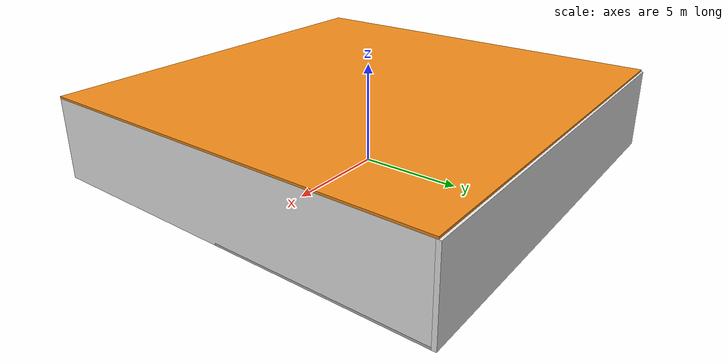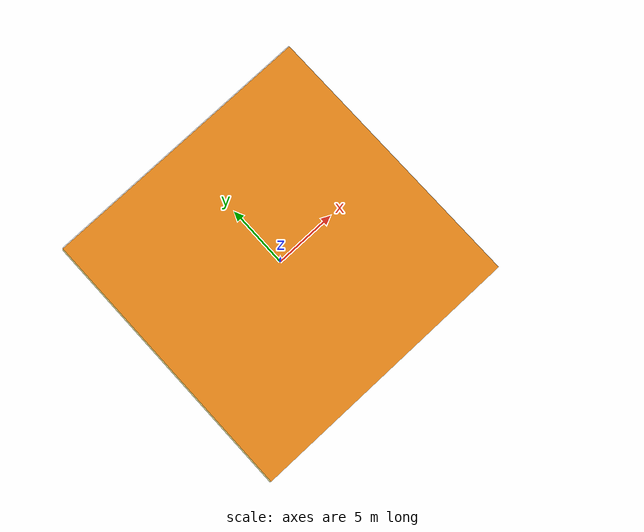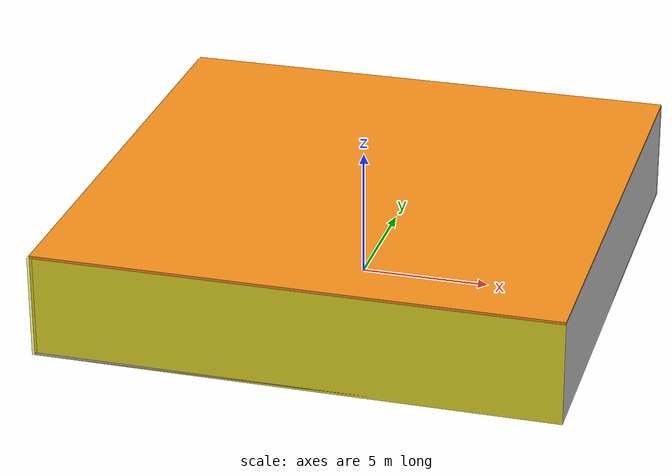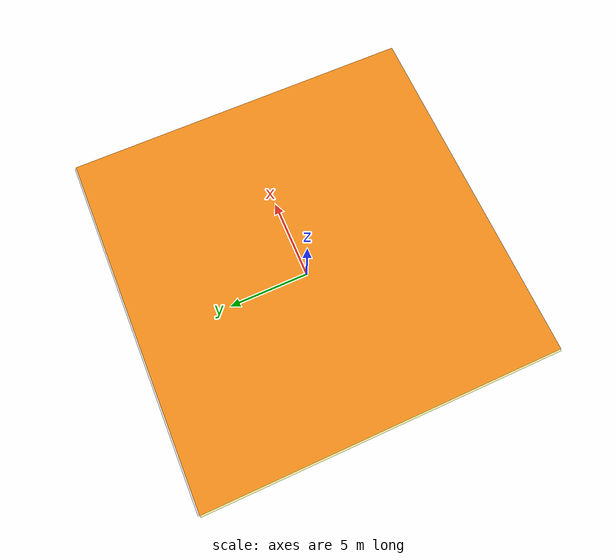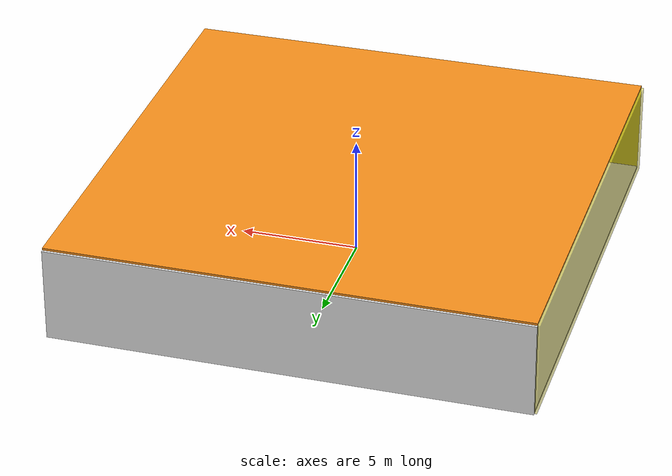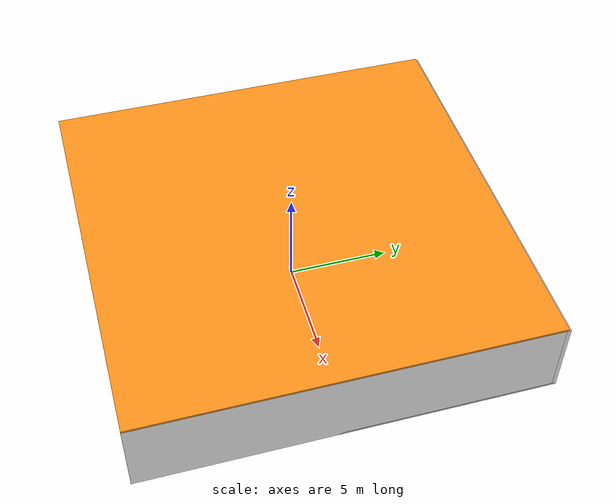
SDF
<sdf version="1.4">
 <world name="default">
  <physics type="ode">
   <max_step_size>0.001</max_step_size>
   <real_time_factor>1</real_time_factor>
   <real_time_update_rate>1000</real_time_update_rate>
   <gravity>0 0 -9.8</gravity>
  </physics>
  <scene><ambient>0.4 0.4 0.4 1</ambient><background>0.7 0.7 0.7 1</background><shadows>1</shadows></scene>
  <model name="Surrounding">
   <static>1</static>
   <link name="Ceiling">
    <collision name="Ceiling_Collision"><geometry><box><size>20 20 0.1</size></box></geometry></collision>
    <visual name="Ceiling_Visual">
     <geometry><box><size>20 20 0.1</size></box></geometry>
     <material>
      <script><uri>file://media/materials/scripts/gazebo.material</uri><name>Gazebo/Orange</name></script>
     </material>
    </visual>
    <pose>0 0 4.05 0 0 0</pose>
   </link>
   <link name="Wall_South">
    <collision name="Wall_South_Collision">
     <geometry><box><size>20 0 4</size></box></geometry>
     <pose>0 0 2 0 -0 0</pose>
    </collision>
    <visual name="Wall_South_Visual">
     <pose>0 0 2 0 -0 0</pose>
     <geometry><box><size>20 0 4</size></box></geometry>
     <material>
      <script><uri>file://media/materials/scripts/gazebo.material</uri><name>Gazebo/YellowGlow</name></script>
     </material>
    </visual>
    <velocity_decay><linear>0</linear><angular>0</angular></velocity_decay>
    <pose>0 -10 0 0 -0 0</pose>
   </link>
   <link name="Wall_East">
    <collision name="Wall_21_Collision">
     <geometry><box><size>20 0 4</size></box></geometry>
     <pose>0 0 2 0 -0 0</pose>
    </collision>
    <visual name="Wall_21_Visual">
     <pose>0 0 2 0 -0 0</pose>
     <geometry><box><size>20 0 4</size></box></geometry>
     <material>
      <script><uri>file://media/materials/scripts/gazebo.material</uri><name>Gazebo/White</name></script>
     </material>
    </visual>
    <velocity_decay><linear>0</linear><angular>0</angular></velocity_decay>
    <pose>10 0 0 0 -0 1.5708</pose>
   </link>
   <link name="Wall_North">
    <collision name="Wall_22_Collision">
     <geometry><box><size>20 0.2 4</size></box></geometry>
     <pose>0 0 2 0 -0 0</pose>
    </collision>
    <visual name="Wall_22_Visual">
     <pose>0 0 2 0 -0 0</pose>
     <geometry><box><size>20 0.2 4</size></box></geometry>
     <material>
      <script><uri>file://media/materials/scripts/gazebo.material</uri><name>Gazebo/White</name></script>
     </material>
    </visual>
    <velocity_decay><linear>0</linear><angular>0</angular></velocity_decay>
    <pose>0 10 0 0 -0 0</pose>
   </link>
   <link name="Wall_West">
    <collision name="Wall_23_Collision">
     <geometry><box><size>20 0.2 4</size></box></geometry>
     <pose>0 0 2 0 -0 0</pose>
    </collision>
    <visual name="Wall_23_Visual">
     <pose>0 0 2 0 -0 0</pose>
     <geometry><box><size>20 0.2 4</size></box></geometry>
     <material>
      <script>
       <uri>file://media/materials/scripts/gazebo.material</uri>
       <name>Gazebo/YellowTransparent</name>
      </script>
     </material>
    </visual>
    <velocity_decay><linear>0</linear><angular>0</angular></velocity_decay>
    <pose>-10 0 0 0 0 -1.5708</pose>
   </link>
   <link name="Ground_link">
    <collision name="collision">
     <pose>0 0 .05 0 -0 0</pose>
     <geometry><box><size>20 20 0.1</size></box></geometry>
    </collision>
    <visual name="visual">
     <pose>0 0 .05 0 -0 0</pose>
     <geometry><box><size>20 20 0.1</size></box></geometry>
     <material>
      <script><uri>file://media/materials/scripts/gazebo.material</uri><name>Gazebo/LightOff</name></script>
     </material>
    </visual>
   </link>
   <static>1</static>
  </model>
  <spherical_coordinates>
   <surface_model>EARTH_WGS84</surface_model>
   <latitude_deg>0</latitude_deg>
   <longitude_deg>0</longitude_deg>
   <elevation>0</elevation>
   <heading_deg>0</heading_deg>
  </spherical_coordinates>
  <light name="lightball_0" type="diffuse">
   <diffuse>0.8 0.8 0.8 1</diffuse>
   <specular>0.2 0.2 0.2 1</specular>
   <attenuation>
    <range>100</range>
    <constant>0.7</constant>
    <linear>0.01</linear>
    <quadratic>0.001</quadratic>
   </attenuation>
   <direction>-0.5 0.1 -0.9</direction>
   <pose>2.1455598951 -8.71885527849 0.919633775977 0 0 0</pose>
  </light>
  <light name="lightball_1" type="diffuse">
   <diffuse>0.8 0.8 0.8 1</diffuse>
   <specular>0.2 0.2 0.2 1</specular>
   <attenuation>
    <range>100</range>
    <constant>0.7</constant>
    <linear>0.01</linear>
    <quadratic>0.001</quadratic>
   </attenuation>
   <direction>-0.5 0.1 -0.9</direction>
   <pose>3.77440732822 -5.47869696638 3.19067714399 0 0 0</pose>
  </light>
  <light name="lightball_2" type="diffuse">
   <diffuse>0.8 0.8 0.8 1</diffuse>
   <specular>0.2 0.2 0.2 1</specular>
   <attenuation>
    <range>100</range>
    <constant>0.7</constant>
    <linear>0.01</linear>
    <quadratic>0.001</quadratic>
   </attenuation>
   <direction>-0.5 0.1 -0.9</direction>
   <pose>3.00161298481 -2.66907233799 1.41523178971 0 0 0</pose>
  </light>
  <light name="lightball_3" type="diffuse">
   <diffuse>0.8 0.8 0.8 1</diffuse>
   <specular>0.2 0.2 0.2 1</specular>
   <attenuation>
    <range>100</range>
    <constant>0.7</constant>
    <linear>0.01</linear>
    <quadratic>0.001</quadratic>
   </attenuation>
   <direction>-0.5 0.1 -0.9</direction>
   <pose>-9.16305727813 8.26487359116 1.09773793114 0 0 0</pose>
  </light>
  <light name="lightball_4" type="diffuse">
   <diffuse>0.8 0.8 0.8 1</diffuse>
   <specular>0.2 0.2 0.2 1</specular>
   <attenuation>
    <range>100</range>
    <constant>0.7</constant>
    <linear>0.01</linear>
    <quadratic>0.001</quadratic>
   </attenuation>
   <direction>-0.5 0.1 -0.9</direction>
   <pose>-8.31296976762 -0.604498680194 2.06776895288 0 0 0</pose>
  </light>
  <light name="lightball_5" type="diffuse">
   <diffuse>0.8 0.8 0.8 1</diffuse>
   <specular>0.2 0.2 0.2 1</specular>
   <attenuation>
    <range>100</range>
    <constant>0.7</constant>
    <linear>0.01</linear>
    <quadratic>0.001</quadratic>
   </attenuation>
   <direction>-0.5 0.1 -0.9</direction>
   <pose>4.54815435545 7.01987943527 0.84922028655 0 0 0</pose>
  </light>
  <light name="lightball_6" type="diffuse">
   <diffuse>0.8 0.8 0.8 1</diffuse>
   <specular>0.2 0.2 0.2 1</specular>
   <attenuation>
    <range>100</range>
    <constant>0.7</constant>
    <linear>0.01</linear>
    <quadratic>0.001</quadratic>
   </attenuation>
   <direction>-0.5 0.1 -0.9</direction>
   <pose>8.53055558914 -6.05888709046 3.27897669059 0 0 0</pose>
  </light>
  <light name="lightball_7" type="diffuse">
   <diffuse>0.8 0.8 0.8 1</diffuse>
   <specular>0.2 0.2 0.2 1</specular>
   <attenuation>
    <range>100</range>
    <constant>0.7</constant>
    <linear>0.01</linear>
    <quadratic>0.001</quadratic>
   </attenuation>
   <direction>-0.5 0.1 -0.9</direction>
   <pose>5.36864088306 -6.45819344484 1.5409768076 0 0 0</pose>
  </light>
  <light name="lightball_8" type="diffuse">
   <diffuse>0.8 0.8 0.8 1</diffuse>
   <specular>0.2 0.2 0.2 1</specular>
   <attenuation>
    <range>100</range>
    <constant>0.7</constant>
    <linear>0.01</linear>
    <quadratic>0.001</quadratic>
   </attenuation>
   <direction>-0.5 0.1 -0.9</direction>
   <pose>-9.57998834809 6.61903494949 1.5919854352 0 0 0</pose>
  </light>
  <light name="lightball_9" type="diffuse">
   <diffuse>0.8 0.8 0.8 1</diffuse>
   <specular>0.2 0.2 0.2 1</specular>
   <attenuation>
    <range>100</range>
    <constant>0.7</constant>
    <linear>0.01</linear>
    <quadratic>0.001</quadratic>
   </attenuation>
   <direction>-0.5 0.1 -0.9</direction>
   <pose>9.16471214586 6.73482855079 3.46668703601 0 0 0</pose>
  </light>
  <light name="lightball_10" type="diffuse">
   <diffuse>0.8 0.8 0.8 1</diffuse>
   <specular>0.2 0.2 0.2 1</specular>
   <attenuation>
    <range>100</range>
    <constant>0.7</constant>
    <linear>0.01</linear>
    <quadratic>0.001</quadratic>
   </attenuation>
   <direction>-0.5 0.1 -0.9</direction>
   <pose>0.066917896464 -3.42340200829 1.85930018366 0 0 0</pose>
  </light>
  <include><uri>model://cabinet</uri><pose>5.22252922143 -8.06915287601 0 0 0 0.432475264632</pose></include>
  <include>
   <uri>model://construction_cone</uri>
   <pose>3.73151332749 -1.13582037816 0 0 0 1.12912261194</pose>
  </include>
 </world>
</sdf>

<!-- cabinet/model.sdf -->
<sdf version="1.5">
  <model name="cabinet">
    <static>true</static>
    <link name="cabinet_bottom_plate">
      <inertial>
        <pose>0 0 -1 0 0 0</pose>
        <inertia>
          <ixx>2.050000</ixx>
          <ixy>0</ixy>
          <ixz>0</ixz>
          <iyy>2.050000</iyy>
          <iyz>0</iyz>
          <izz>2.050000</izz>
        </inertia>
        <mass>25.000000</mass>
      </inertial>
      <collision name="cabinet_bottom_plate_geom">
        <pose>0 0 0.010000 0 0 0</pose>
        <geometry>
          <box>
            <size>0.450000 0.450000 0.020000</size>
          </box>
        </geometry>
      </collision>
      <visual name="cabinet_bottom_plate_geom_visual">
        <pose>0 0 0.010000 0 0 0</pose>
        <geometry>
          <box>
            <size>0.450000 0.450000 0.020000</size>
          </box>
        </geometry>
        <material>
          <script>
            <uri>model://media/materials/scripts/gazebo.material</uri>
            <name>Gazebo/Wood</name>
          </script>
        </material>
      </visual>
      <collision name="cabinet_bottom_plate_geom_cabinet_back_plate">
        <pose>0.235000 0 0.510000 0 0 0</pose>
        <geometry>
          <box>
            <size>0.020000 0.450000 1.020000</size>
          </box>
        </geometry>
      </collision>
      <visual name="cabinet_bottom_plate_geom_cabinet_back_plate_visual">
        <pose>0.235000 0 0.510000 0 0 0</pose>
        <geometry>
          <box>
            <size>0.020000 0.450000 1.020000</size>
          </box>
        </geometry>
        <material>
          <script>
            <uri>model://media/materials/scripts/gazebo.material</uri>
            <name>Gazebo/Wood</name>
          </script>
        </material>
      </visual>
      <collision name="cabinet_bottom_plate_geom_cabinet_left_plate">
        <pose>0 0.235000 0.510000 0 0 0</pose>
        <geometry>
          <box>
            <size>0.450000 0.020000 1.020000</size>
          </box>
        </geometry>
      </collision>
      <visual name="cabinet_bottom_plate_geom_cabinet_left_plate_visual">
        <pose>0 0.235000 0.510000 0 0 0</pose>
        <geometry>
          <box>
            <size>0.450000 0.020000 1.020000</size>
          </box>
        </geometry>
        <material>
          <script>
            <uri>model://media/materials/scripts/gazebo.material</uri>
            <name>Gazebo/Wood</name>
          </script>
        </material>
      </visual>
      <collision name="cabinet_bottom_plate_geom_cabinet_middle_plate">
        <pose>0 0 0.510000 0 0 0</pose>
        <geometry>
          <box>
            <size>0.450000 0.450000 0.020000</size>
          </box>
        </geometry>
      </collision>
      <visual name="cabinet_bottom_plate_geom_cabinet_middle_plate_visual">
        <pose>0 0 0.510000 0 0 0</pose>
        <geometry>
          <box>
            <size>0.450000 0.450000 0.020000</size>
          </box>
        </geometry>
        <material>
          <script>
            <uri>model://media/materials/scripts/gazebo.material</uri>
            <name>Gazebo/Wood</name>
          </script>
        </material>
      </visual>
      <collision name="cabinet_bottom_plate_geom_cabinet_right_plate">
        <pose>0 -0.235000 0.510000 0 0 0</pose>
        <geometry>
          <box>
            <size>0.450000 0.020000 1.020000</size>
          </box>
        </geometry>
      </collision>
      <visual name="cabinet_bottom_plate_geom_cabinet_right_plate_visual">
        <pose>0 -0.235000 0.510000 0 0 0</pose>
        <geometry>
          <box>
            <size>0.450000 0.020000 1.020000</size>
          </box>
        </geometry>
        <material>
          <script>
            <uri>model://media/materials/scripts/gazebo.material</uri>
            <name>Gazebo/Wood</name>
          </script>
        </material>
      </visual>
      <collision name="cabinet_bottom_plate_geom_cabinet_top_plate">
        <pose>0 0 1.010000 0 0 0</pose>
        <geometry>
          <box>
            <size>0.450000 0.450000 0.020000</size>
          </box>
        </geometry>
      </collision>
      <visual name="cabinet_bottom_plate_geom_cabinet_top_plate_visual">
        <pose>0 0 1.010000 0 0 0</pose>
        <geometry>
          <box>
            <size>0.450000 0.450000 0.020000</size>
          </box>
        </geometry>
        <material>
          <script>
            <uri>model://media/materials/scripts/gazebo.material</uri>
            <name>Gazebo/Wood</name>
          </script>
        </material>
      </visual>
    </link>
  </model>
</sdf>

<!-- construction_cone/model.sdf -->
<sdf version="1.5">
  <model name="Construction Cone">
    <link name="link">
      <collision name="collision">
        <geometry>
          <mesh>
            <scale>10 10 10</scale>
            <uri>file://isr-testbed/construction_cone/meshes/construction_cone.dae</uri>
          </mesh>
        </geometry>
      </collision>
      <visual name="visual">
        <geometry>
          <mesh>
            <scale>10 10 10</scale>
            <uri>file://isr-testbed/construction_cone/meshes/construction_cone.dae</uri>
          </mesh>
        </geometry>
      </visual>
    </link>
  </model>
</sdf>
